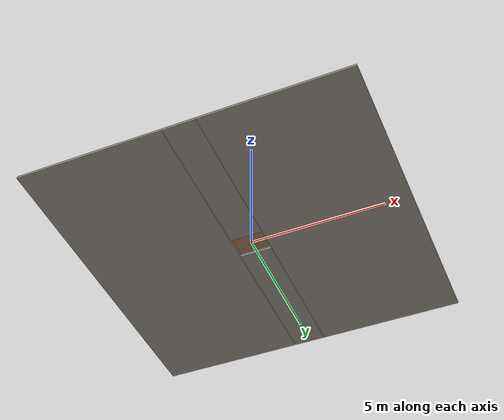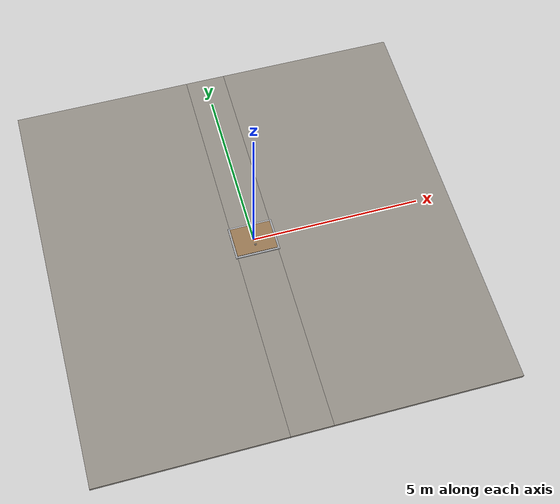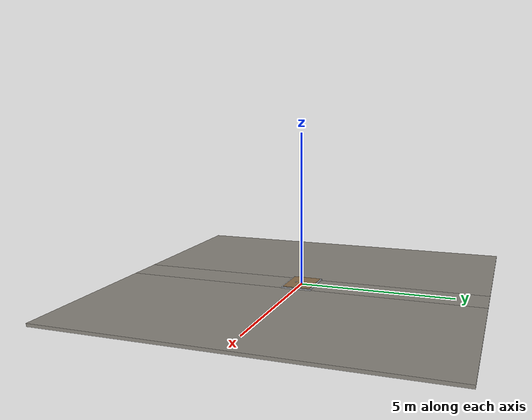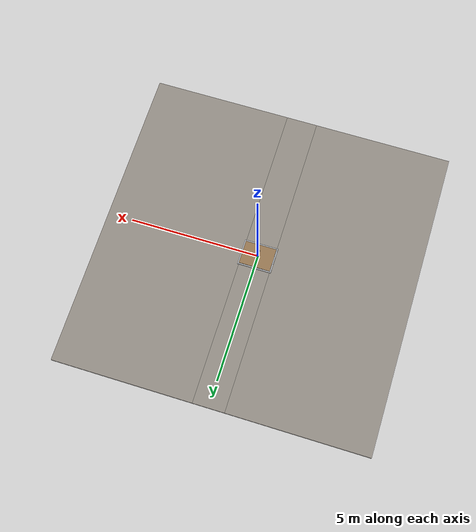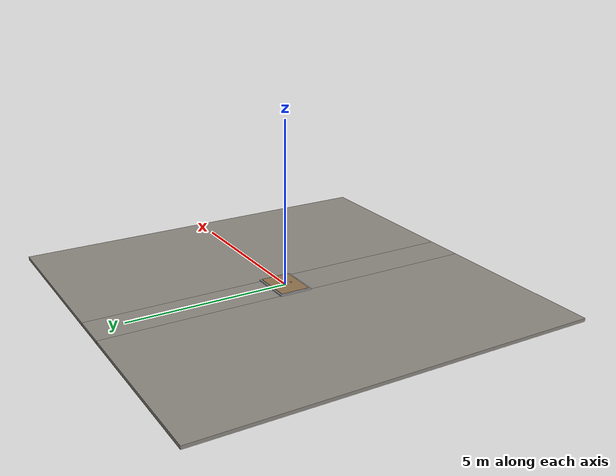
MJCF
<?xml version="1.0" ?>
<mujoco model="db0241_hatch_floor_minimal">
  <compiler angle="radian" meshdir="../../hardware" texturedir="../../textures" autolimits="true" inertiafromgeom="false"/>
  <option timestep="0.002" integrator="implicitfast" cone="elliptic" impratio="10" noslip_iterations="3">
    <flag multiccd="enable"/>
  </option>
  <size memory="16M"/>
  <default>
    <geom condim="4" solref="0.005 1" solimp="0.95 0.99 0.001"/>
    <joint solreflimit="0.005 1" solimplimit="0.95 0.99 0.001"/>
    <tendon solreflimit="0.005 1"/>
    <equality solref="0.002 1"/>
  </default>
  <visual>
    <headlight ambient="0.4 0.4 0.4" diffuse="0.7 0.7 0.7" specular="0.2 0.2 0.2"/>
    <quality shadowsize="4096"/>
    <map znear="0.01" zfar="60"/>
  </visual>
  <asset>
    <material name="mat_floor" rgba="0.55 0.53 0.5 1" specular="0.2" shininess="0.15" reflectance="0"/>
    <material name="mat_wall" rgba="0.78 0.76 0.7 1" specular="0.2" shininess="0.1" reflectance="0"/>
    <material name="mat_pit" rgba="0.3 0.3 0.3 1" specular="0.2" shininess="0.1" reflectance="0"/>
    <material name="mat_frame" rgba="0.65 0.66 0.68 1" specular="0.74" shininess="0.5" reflectance="0.36"/>
    <material name="mat_leaf" rgba="0.566 0.446 0.306 1" specular="0.2" shininess="0.5" reflectance="0"/>
    <material name="mat_hinge" rgba="0.65 0.66 0.68 1" specular="0.74" shininess="0.5" reflectance="0.36"/>
    <material name="mat_op_steel_galvanized" rgba="0.65 0.66 0.68 1" specular="0.74" shininess="0.5" reflectance="0.36"/>
    <material name="mat_strut" rgba="0.75 0.76 0.77 1" specular="0.8" shininess="0.65" reflectance="0.4"/>
    <material name="mat_bolt" rgba="0.65 0.66 0.68 1" specular="0.74" shininess="0.5" reflectance="0.36"/>
    <texture name="skybox" type="skybox" builtin="gradient" rgb1="0.6 0.7 0.85" rgb2="0.9 0.92 0.95" width="256" height="256"/>
  </asset>
  <worldbody>
    <light name="sun" pos="1.5 -2.5 4" dir="-0.3 0.5 -0.8" directional="true" diffuse="0.8 0.8 0.8" specular="0.3 0.3 0.3" castshadow="true"/>
    <light name="fill" pos="-1.5 2.5 3" dir="0.3 -0.5 -0.7" directional="true" diffuse="0.35 0.35 0.4" castshadow="false"/>
    <camera name="robot_view" pos="0 -1.875 0.98" xyaxes="1 0 0 0 0.26963 0.962964" fovy="52"/>
    <camera name="far_view" pos="0 1.875 0.98" xyaxes="-1 0 0 0 -0.26963 0.962964" fovy="52"/>
    <camera name="iso" pos="1.425 -1.575 1.28" xyaxes="0.741536 0.670913 0 -0.242917 0.268487 0.932151" fovy="46"/>
    <camera name="detail_handle" pos="0.35 -0.7375 0.912" xyaxes="0.843661 0.536875 0 -0.426006 0.669439 0.608581" fovy="38"/>
    <geom name="floor_a" type="box" size="2.6975 6 0.05" pos="-3.3025 0 -0.05" material="mat_floor" group="0" contype="1" conaffinity="1" friction="0.6 0.005 0.0001" density="2400"/>
    <geom name="floor_b" type="box" size="2.6975 6 0.05" pos="3.3025 0 -0.05" material="mat_floor" group="0" contype="1" conaffinity="1" friction="0.6 0.005 0.0001" density="2400"/>
    <geom name="floor_c" type="box" size="0.605 2.7725 0.05" pos="0 -3.2275 -0.05" material="mat_floor" group="0" contype="1" conaffinity="1" friction="0.6 0.005 0.0001" density="2400"/>
    <geom name="floor_d" type="box" size="0.605 2.7725 0.05" pos="0 3.2275 -0.05" material="mat_floor" group="0" contype="1" conaffinity="1" friction="0.6 0.005 0.0001" density="2400"/>
    <geom name="curb_l" type="box" size="0.025 0.505 0.02" pos="-0.63 0 0.02" material="mat_frame" group="0" contype="1" conaffinity="1" friction="0.6 0.005 0.0001" density="7850"/>
    <geom name="curb_r" type="box" size="0.025 0.505 0.02" pos="0.63 0 0.02" material="mat_frame" group="0" contype="1" conaffinity="1" friction="0.6 0.005 0.0001" density="7850"/>
    <geom name="curb_n" type="box" size="0.605 0.025 0.02" pos="0 -0.48 0.02" material="mat_frame" group="0" contype="1" conaffinity="1" friction="0.6 0.005 0.0001" density="7850"/>
    <geom name="curb_f" type="box" size="0.605 0.025 0.02" pos="0 0.48 0.02" material="mat_frame" group="0" contype="1" conaffinity="1" friction="0.6 0.005 0.0001" density="7850"/>
    <site name="approach_point" pos="0 -1.5 0" quat="1 0 0 0" size="0.05" rgba="0.2 0.9 0.2 0.5" group="4"/>
    <site name="goal_point" pos="0 0 -1" quat="1 0 0 0" size="0.05" rgba="0.2 0.9 0.2 0.5" group="4"/>
    <site name="door_plane_center" pos="0 0 0" quat="1 0 0 0" size="0.02" rgba="0.2 0.9 0.2 0.5" group="4"/>
    <body name="hatch" pos="0 0.455 0.04">
      <inertial pos="0 -0.455 0" mass="27.76796" quat="1 0 0 0" diaginertia="1.885046453 3.33452469 5.214832078"/>
      <joint name="hatch_hinge" type="hinge" axis="-1 0 0" pos="0 0.01 0" limited="true" range="0 1.745329" damping="30.837043" frictionloss="0.516228" stiffness="12.375" springref="-3.333333" armature="0.02"/>
      <geom name="hatch_slab" type="box" size="0.6 0.451 0.016" pos="0 -0.455 0" material="mat_leaf" group="0" contype="1" conaffinity="1" friction="0.6 0.005 0.0001" density="1"/>
      <body name="ring" pos="0 -0.6825 0.016">
        <inertial pos="0 0.019982 0.002997" mass="0.2225" quat="-0.058307 0.998299 0 0" diaginertia="0.000076951 0.000083485 0.000154999"/>
        <joint name="ring_hinge" type="hinge" axis="1 0 0" limited="true" range="0 1.392122" damping="0.003476" armature="0.0001"/>
        <geom name="ring_geom" type="capsule" size="0.006 0.035" pos="0 0.04 0.006" quat="0.707107 0 0.707107 0" material="mat_op_steel_galvanized" group="0" contype="1" conaffinity="1" friction="0.6 0.005 0.0001" density="7800"/>
        <geom name="ring_knuckle" type="cylinder" size="0.008 0.022" pos="0 0 0" quat="0.707107 0 0.707107 0" material="mat_op_steel_galvanized" group="1" contype="0" conaffinity="0" density="7800"/>
        <geom name="ring_arm_n" type="capsule" size="0.006 0.02" pos="-0.02 0.02 0.003" quat="0.707107 -0.707107 0 0" material="mat_op_steel_galvanized" group="1" contype="0" conaffinity="0" density="7800"/>
        <geom name="ring_arm_p" type="capsule" size="0.006 0.02" pos="0.02 0.02 0.003" quat="0.707107 -0.707107 0 0" material="mat_op_steel_galvanized" group="1" contype="0" conaffinity="0" density="7800"/>
        <site name="grip_ring" pos="0 0.04 0.006" quat="1 0 0 0" size="0.01" rgba="0.2 0.9 0.2 0.5" group="4"/>
      </body>
    </body>
  </worldbody>
  <sensor>
    <jointpos name="hatch_hinge_pos" joint="hatch_hinge"/>
    <jointvel name="hatch_hinge_vel" joint="hatch_hinge"/>
    <jointpos name="ring_hinge_pos" joint="ring_hinge"/>
    <jointvel name="ring_hinge_vel" joint="ring_hinge"/>
  </sensor>
</mujoco>
